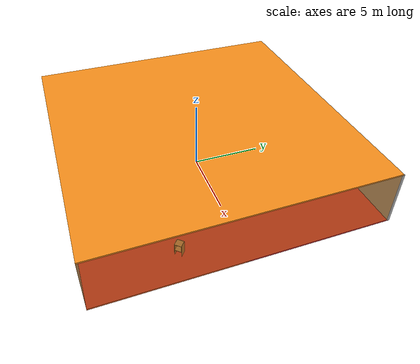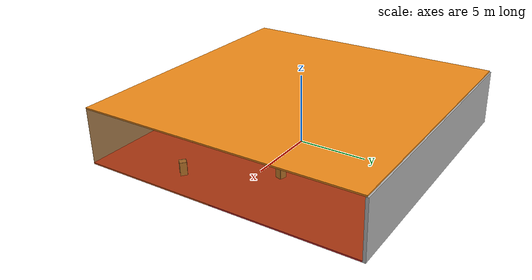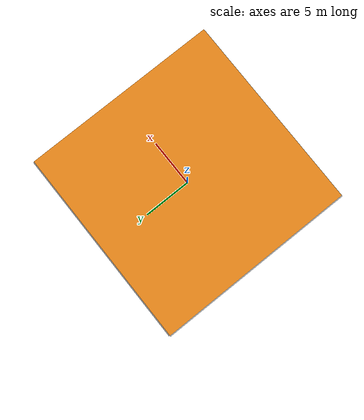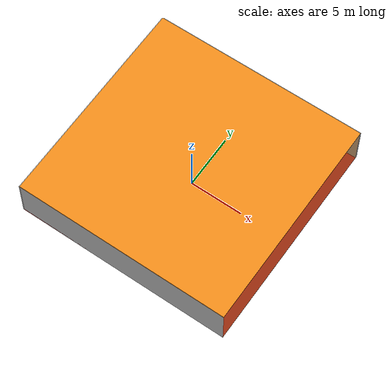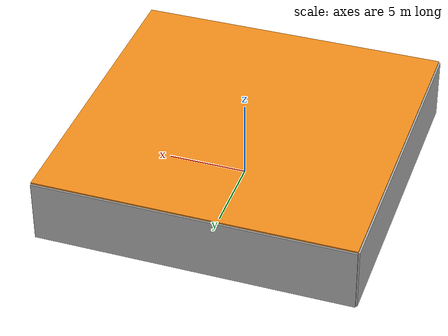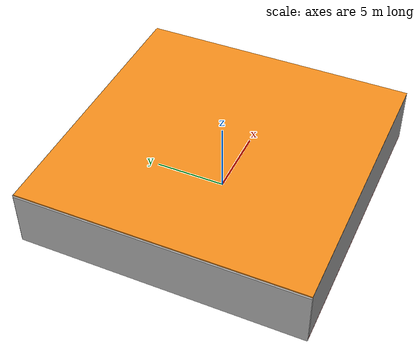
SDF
<sdf version="1.4">
 <world name="default">
  <physics type="ode">
   <max_step_size>0.001</max_step_size>
   <real_time_factor>1</real_time_factor>
   <real_time_update_rate>1000</real_time_update_rate>
   <gravity>0 0 -9.8</gravity>
  </physics>
  <scene><ambient>0.4 0.4 0.4 1</ambient><background>0.7 0.7 0.7 1</background><shadows>1</shadows></scene>
  <model name="Surrounding">
   <static>1</static>
   <link name="Ceiling">
    <collision name="Ceiling_Collision"><geometry><box><size>20 20 0.1</size></box></geometry></collision>
    <visual name="Ceiling_Visual">
     <geometry><box><size>20 20 0.1</size></box></geometry>
     <material>
      <script><uri>file://media/materials/scripts/gazebo.material</uri><name>Gazebo/Orange</name></script>
     </material>
    </visual>
    <pose>0 0 4.05 0 0 0</pose>
   </link>
   <link name="Wall_South">
    <collision name="Wall_South_Collision">
     <geometry><box><size>20 0 4</size></box></geometry>
     <pose>0 0 2 0 -0 0</pose>
    </collision>
    <visual name="Wall_South_Visual">
     <pose>0 0 2 0 -0 0</pose>
     <geometry><box><size>20 0 4</size></box></geometry>
     <material>
      <script><uri>file://media/materials/scripts/gazebo.material</uri><name>Gazebo/Grey</name></script>
     </material>
    </visual>
    <velocity_decay><linear>0</linear><angular>0</angular></velocity_decay>
    <pose>0 -10 0 0 -0 0</pose>
   </link>
   <link name="Wall_East">
    <collision name="Wall_21_Collision">
     <geometry><box><size>20 0 4</size></box></geometry>
     <pose>0 0 2 0 -0 0</pose>
    </collision>
    <visual name="Wall_21_Visual">
     <pose>0 0 2 0 -0 0</pose>
     <geometry><box><size>20 0 4</size></box></geometry>
     <material>
      <script>
       <uri>file://media/materials/scripts/gazebo.material</uri>
       <name>Gazebo/OrangeTransparent</name>
      </script>
     </material>
    </visual>
    <velocity_decay><linear>0</linear><angular>0</angular></velocity_decay>
    <pose>10 0 0 0 -0 1.5708</pose>
   </link>
   <link name="Wall_North">
    <collision name="Wall_22_Collision">
     <geometry><box><size>20 0.2 4</size></box></geometry>
     <pose>0 0 2 0 -0 0</pose>
    </collision>
    <visual name="Wall_22_Visual">
     <pose>0 0 2 0 -0 0</pose>
     <geometry><box><size>20 0.2 4</size></box></geometry>
     <material>
      <script><uri>file://media/materials/scripts/gazebo.material</uri><name>Gazebo/PioneerBody</name></script>
     </material>
    </visual>
    <velocity_decay><linear>0</linear><angular>0</angular></velocity_decay>
    <pose>0 10 0 0 -0 0</pose>
   </link>
   <link name="Wall_West">
    <collision name="Wall_23_Collision">
     <geometry><box><size>20 0.2 4</size></box></geometry>
     <pose>0 0 2 0 -0 0</pose>
    </collision>
    <visual name="Wall_23_Visual">
     <pose>0 0 2 0 -0 0</pose>
     <geometry><box><size>20 0.2 4</size></box></geometry>
     <material>
      <script><uri>file://media/materials/scripts/gazebo.material</uri><name>Gazebo/Pioneer2Body</name></script>
     </material>
    </visual>
    <velocity_decay><linear>0</linear><angular>0</angular></velocity_decay>
    <pose>-10 0 0 0 0 -1.5708</pose>
   </link>
   <link name="Ground_link">
    <collision name="collision">
     <pose>0 0 .05 0 -0 0</pose>
     <geometry><box><size>20 20 0.1</size></box></geometry>
    </collision>
    <visual name="visual">
     <pose>0 0 .05 0 -0 0</pose>
     <geometry><box><size>20 20 0.1</size></box></geometry>
     <material>
      <script><uri>file://media/materials/scripts/gazebo.material</uri><name>Gazebo/Red</name></script>
     </material>
    </visual>
   </link>
   <static>1</static>
  </model>
  <spherical_coordinates>
   <surface_model>EARTH_WGS84</surface_model>
   <latitude_deg>0</latitude_deg>
   <longitude_deg>0</longitude_deg>
   <elevation>0</elevation>
   <heading_deg>0</heading_deg>
  </spherical_coordinates>
  <light name="lightball_0" type="diffuse">
   <diffuse>0.8 0.8 0.8 1</diffuse>
   <specular>0.2 0.2 0.2 1</specular>
   <attenuation>
    <range>100</range>
    <constant>0.7</constant>
    <linear>0.01</linear>
    <quadratic>0.001</quadratic>
   </attenuation>
   <direction>-0.5 0.1 -0.9</direction>
   <pose>5.28202953531 -2.70508406864 1.44724386451 0 0 0</pose>
  </light>
  <light name="lightball_1" type="diffuse">
   <diffuse>0.8 0.8 0.8 1</diffuse>
   <specular>0.2 0.2 0.2 1</specular>
   <attenuation>
    <range>100</range>
    <constant>0.7</constant>
    <linear>0.01</linear>
    <quadratic>0.001</quadratic>
   </attenuation>
   <direction>-0.5 0.1 -0.9</direction>
   <pose>0.307782118565 -2.31608030761 1.44433982432 0 0 0</pose>
  </light>
  <light name="lightball_2" type="diffuse">
   <diffuse>0.8 0.8 0.8 1</diffuse>
   <specular>0.2 0.2 0.2 1</specular>
   <attenuation>
    <range>100</range>
    <constant>0.7</constant>
    <linear>0.01</linear>
    <quadratic>0.001</quadratic>
   </attenuation>
   <direction>-0.5 0.1 -0.9</direction>
   <pose>-1.92369328003 3.45307047374 3.23399315792 0 0 0</pose>
  </light>
  <light name="lightball_3" type="diffuse">
   <diffuse>0.8 0.8 0.8 1</diffuse>
   <specular>0.2 0.2 0.2 1</specular>
   <attenuation>
    <range>100</range>
    <constant>0.7</constant>
    <linear>0.01</linear>
    <quadratic>0.001</quadratic>
   </attenuation>
   <direction>-0.5 0.1 -0.9</direction>
   <pose>-7.20144878689 -2.41466120561 1.10447970437 0 0 0</pose>
  </light>
  <light name="lightball_4" type="diffuse">
   <diffuse>0.8 0.8 0.8 1</diffuse>
   <specular>0.2 0.2 0.2 1</specular>
   <attenuation>
    <range>100</range>
    <constant>0.7</constant>
    <linear>0.01</linear>
    <quadratic>0.001</quadratic>
   </attenuation>
   <direction>-0.5 0.1 -0.9</direction>
   <pose>2.10693095573 5.21238383608 1.38192146761 0 0 0</pose>
  </light>
  <light name="lightball_5" type="diffuse">
   <diffuse>0.8 0.8 0.8 1</diffuse>
   <specular>0.2 0.2 0.2 1</specular>
   <attenuation>
    <range>100</range>
    <constant>0.7</constant>
    <linear>0.01</linear>
    <quadratic>0.001</quadratic>
   </attenuation>
   <direction>-0.5 0.1 -0.9</direction>
   <pose>2.17400706057 1.49135525462 3.34849055204 0 0 0</pose>
  </light>
  <light name="lightball_6" type="diffuse">
   <diffuse>0.8 0.8 0.8 1</diffuse>
   <specular>0.2 0.2 0.2 1</specular>
   <attenuation>
    <range>100</range>
    <constant>0.7</constant>
    <linear>0.01</linear>
    <quadratic>0.001</quadratic>
   </attenuation>
   <direction>-0.5 0.1 -0.9</direction>
   <pose>-4.29388780083 -8.8758915821 1.02330199142 0 0 0</pose>
  </light>
  <light name="lightball_7" type="diffuse">
   <diffuse>0.8 0.8 0.8 1</diffuse>
   <specular>0.2 0.2 0.2 1</specular>
   <attenuation>
    <range>100</range>
    <constant>0.7</constant>
    <linear>0.01</linear>
    <quadratic>0.001</quadratic>
   </attenuation>
   <direction>-0.5 0.1 -0.9</direction>
   <pose>7.15176635481 7.16882901036 3.42748092948 0 0 0</pose>
  </light>
  <light name="lightball_8" type="diffuse">
   <diffuse>0.8 0.8 0.8 1</diffuse>
   <specular>0.2 0.2 0.2 1</specular>
   <attenuation>
    <range>100</range>
    <constant>0.7</constant>
    <linear>0.01</linear>
    <quadratic>0.001</quadratic>
   </attenuation>
   <direction>-0.5 0.1 -0.9</direction>
   <pose>9.80265723253 -0.252739414492 3.45524124439 0 0 0</pose>
  </light>
  <light name="lightball_9" type="diffuse">
   <diffuse>0.8 0.8 0.8 1</diffuse>
   <specular>0.2 0.2 0.2 1</specular>
   <attenuation>
    <range>100</range>
    <constant>0.7</constant>
    <linear>0.01</linear>
    <quadratic>0.001</quadratic>
   </attenuation>
   <direction>-0.5 0.1 -0.9</direction>
   <pose>-7.30350154898 -8.45815697881 2.25047509933 0 0 0</pose>
  </light>
  <light name="lightball_10" type="diffuse">
   <diffuse>0.8 0.8 0.8 1</diffuse>
   <specular>0.2 0.2 0.2 1</specular>
   <attenuation>
    <range>100</range>
    <constant>0.7</constant>
    <linear>0.01</linear>
    <quadratic>0.001</quadratic>
   </attenuation>
   <direction>-0.5 0.1 -0.9</direction>
   <pose>9.92307486846 3.13014891975 1.01541705793 0 0 0</pose>
  </light>
  <include>
   <uri>model://construction_cone</uri>
   <pose>-7.01375727946 -5.4001388081 0 0 0 2.66824751838</pose>
  </include>
  <include>
   <uri>model://construction_cone</uri>
   <pose>-2.04420773849 -7.69443417101 0 0 0 1.38506849112</pose>
  </include>
  <include>
   <uri>model://robocup_3Dsim_goal</uri>
   <pose>-2.4431499875 1.89389136691 0 0 0 2.06923609313</pose>
  </include>
  <include><uri>model://cabinet</uri><pose>5.04940111851 1.58354312911 0 0 0 1.28116529115</pose></include>
  <include><uri>model://cabinet</uri><pose>8.00345423037 -3.95853047402 0 0 0 2.42775642567</pose></include>
 </world>
</sdf>

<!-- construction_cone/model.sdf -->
<sdf version="1.5">
  <model name="Construction Cone">
    <link name="link">
      <collision name="collision">
        <geometry>
          <mesh>
            <scale>10 10 10</scale>
            <uri>file://isr-testbed/construction_cone/meshes/construction_cone.dae</uri>
          </mesh>
        </geometry>
      </collision>
      <visual name="visual">
        <geometry>
          <mesh>
            <scale>10 10 10</scale>
            <uri>file://isr-testbed/construction_cone/meshes/construction_cone.dae</uri>
          </mesh>
        </geometry>
      </visual>
    </link>
  </model>
</sdf>

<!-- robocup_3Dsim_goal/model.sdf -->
<sdf version="1.5">
  <model name="robocup_3d_goal">
    <static>true</static>
    <link name="left_post">
      <pose>0 1.05 0.45 0 0 0</pose>
      <collision name="collision">
        <geometry>
          <cylinder>
            <radius>0.05</radius>
            <length>0.9</length>
          </cylinder>
        </geometry>
      </collision>
      <visual name="visual">
        <geometry>
          <cylinder>
            <radius>0.05</radius>
            <length>0.9</length>
          </cylinder>
        </geometry>
        <material>
          <script>
            <uri>file://media/materials/scripts/gazebo.material</uri>
            <name>Gazebo/ZincYellow</name>
          </script>
        </material>
      </visual>
    </link>
    <link name="left_support_horiz_lower">
      <pose>0.30 1.05 0.01 0 0 0</pose>
      <collision name="collision">
        <geometry>
          <box>
            <size>0.50 0.02 0.02</size>
          </box>
        </geometry>
      </collision>
      <visual name="visual">
        <geometry>
          <box>
            <size>0.50 0.02 0.02</size>
          </box>
        </geometry>
        <material>
          <script>
            <uri>file://media/materials/scripts/gazebo.material</uri>
            <name>Gazebo/White</name>
          </script>
        </material>
      </visual>
    </link>
    <link name="left_support_horiz_upper">
      <pose>0.30 1.05 0.79 0 0 0</pose>
      <collision name="collision">
        <geometry>
          <box>
            <size>0.50 0.02 0.02</size>
          </box>
        </geometry>
      </collision>
      <visual name="visual">
        <geometry>
          <box>
            <size>0.50 0.02 0.02</size>
          </box>
        </geometry>
        <material>
          <script>
            <uri>file://media/materials/scripts/gazebo.material</uri>
            <name>Gazebo/White</name>
          </script>
        </material>
      </visual>
    </link>
    <link name="left_support_vertical">
      <pose>0.56 1.05 0.4 0 1.5708 0</pose>
      <collision name="collision">
        <geometry>
          <box>
            <size>0.80 0.02 0.02</size>
          </box>
        </geometry>
      </collision>
      <visual name="visual">
        <geometry>
          <box>
            <size>0.80 0.02 0.02</size>
          </box>
        </geometry>
        <material>
          <script>
            <uri>file://media/materials/scripts/gazebo.material</uri>
            <name>Gazebo/White</name>
          </script>
        </material>
      </visual>
    </link>
    <link name="right_support_horiz_lower">
      <pose>0.30 -1.05 0.01 0 0 0</pose>
      <collision name="collision">
        <geometry>
          <box>
            <size>0.50 0.02 0.02</size>
          </box>
        </geometry>
      </collision>
      <visual name="visual">
        <geometry>
          <box>
            <size>0.50 0.02 0.02</size>
          </box>
        </geometry>
        <material>
          <script>
            <uri>file://media/materials/scripts/gazebo.material</uri>
            <name>Gazebo/White</name>
          </script>
        </material>
      </visual>
    </link>
    <link name="right_support_horiz_upper">
      <pose>0.30 -1.05 0.79 0 0 0</pose>
      <collision name="collision">
        <geometry>
          <box>
            <size>0.50 0.02 0.02</size>
          </box>
        </geometry>
      </collision>
      <visual name="visual">
        <geometry>
          <box>
            <size>0.50 0.02 0.02</size>
          </box>
        </geometry>
        <material>
          <script>
            <uri>file://media/materials/scripts/gazebo.material</uri>
            <name>Gazebo/White</name>
          </script>
        </material>
      </visual>
    </link>
    <link name="right_support_vertical">
      <pose>0.56 -1.05 0.4 0 1.5708 0</pose>
      <collision name="collision">
        <geometry>
          <box>
            <size>0.80 0.02 0.02</size>
          </box>
        </geometry>
      </collision>
      <visual name="visual">
        <geometry>
          <box>
            <size>0.80 0.02 0.02</size>
          </box>
        </geometry>
        <material>
          <script>
            <uri>file://media/materials/scripts/gazebo.material</uri>
            <name>Gazebo/White</name>
          </script>
        </material>
      </visual>
    </link>
    <link name="center_support_horiz_lower">
      <pose>0.56 0 0.01 0 1.5708 0</pose>
      <collision name="collision">
        <geometry>
          <box>
            <size>0.02 2.08 0.02</size>
          </box>
        </geometry>
      </collision>
      <visual name="visual">
        <geometry>
          <box>
            <size>0.02 2.08 0.02</size>
          </box>
        </geometry>
        <material>
          <script>
            <uri>file://media/materials/scripts/gazebo.material</uri>
            <name>Gazebo/White</name>
          </script>
        </material>
      </visual>
    </link>
    <link name="center_support_horiz_upper">
      <pose>0.56 0 0.79 0 1.5708 0</pose>
      <collision name="collision">
        <geometry>
          <box>
            <size>0.02 2.08 0.02</size>
          </box>
        </geometry>
      </collision>
      <visual name="visual">
        <geometry>
          <box>
            <size>0.02 2.08 0.02</size>
          </box>
        </geometry>
        <material>
          <script>
            <uri>file://media/materials/scripts/gazebo.material</uri>
            <name>Gazebo/White</name>
          </script>
        </material>
      </visual>
    </link>
    <link name="right_post">
      <pose>0 -1.05 0.45 0 0 0</pose>
      <collision name="collision">
        <geometry>
          <cylinder>
            <radius>0.05</radius>
            <length>0.9</length>
          </cylinder>
        </geometry>
      </collision>
      <visual name="visual">
        <geometry>
          <cylinder>
            <radius>0.05</radius>
            <length>0.9</length>
          </cylinder>
        </geometry>
        <material>
          <script>
            <uri>file://media/materials/scripts/gazebo.material</uri>
            <name>Gazebo/ZincYellow</name>
          </script>
        </material>
      </visual>
    </link>
    <link name="crossbar">
      <pose>0 0 0.85 1.57 1.57 0</pose>
      <collision name="collision">
        <geometry>
          <cylinder>
            <radius>0.05</radius>
            <length>2.0</length>
          </cylinder>
        </geometry>
      </collision>
      <visual name="visual">
        <geometry>
          <cylinder>
            <radius>0.05</radius>
            <length>2.0</length>
          </cylinder>
        </geometry>
        <material>
          <script>
            <uri>file://media/materials/scripts/gazebo.material</uri>
            <name>Gazebo/ZincYellow</name>
          </script>
        </material>
      </visual>
    </link>
    <link name="center_net">
      <pose>0.56 0 0.40 0 0 0</pose>
      <collision name="collision">
        <geometry>
          <box>
            <size>0.01 2.1 0.80</size>
          </box>
        </geometry>
      </collision>
      <visual name="visual">
        <geometry>
          <box>
            <size>0.01 2.1 0.80</size>
          </box>
        </geometry>
        <material>
          <script>
            <uri>model://../model_source/models/robocup09_spl_field/materials/scripts/</uri>
            <uri>model://../model_source/models/robocup09_spl_field/materials/textures/</uri>
            <name>RoboCup/Net</name>
          </script>
        </material>
      </visual>
    </link>
    <link name="left_net">
      <pose>0.30 1.05 0.40 0 0 0</pose>
      <collision name="collision">
        <geometry>
          <box>
            <size>0.50 0.01 0.76</size>
          </box>
        </geometry>
      </collision>
      <visual name="visual">
        <geometry>
          <box>
            <size>0.50 0.01 0.76</size>
          </box>
        </geometry>
        <material>
          <script>
            <uri>model://../model_source/models/robocup09_spl_field/materials/scripts/</uri>
            <uri>model://../model_source/models/robocup09_spl_field/materials/textures/</uri>
            <name>RoboCup/Net</name>
          </script>
        </material>
      </visual>
    </link>
    <link name="right_net">
      <pose>0.30 -1.05 0.40 0 0 0</pose>
      <collision name="collision">
        <geometry>
          <box>
            <size>0.50 0.01 0.76</size>
          </box>
        </geometry>
      </collision>
      <visual name="visual">
        <geometry>
          <box>
            <size>0.50 0.01 0.76</size>
          </box>
        </geometry>
        <material>
          <script>
            <uri>model://../model_source/models/robocup09_spl_field/materials/scripts/</uri>
            <uri>model://../model_source/models/robocup09_spl_field/materials/textures/</uri>
            <name>RoboCup/Net</name>
          </script>
        </material>
      </visual>
    </link>
  </model>
</sdf>

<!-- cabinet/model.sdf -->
<sdf version="1.5">
  <model name="cabinet">
    <static>true</static>
    <link name="cabinet_bottom_plate">
      <inertial>
        <pose>0 0 -1 0 0 0</pose>
        <inertia>
          <ixx>2.050000</ixx>
          <ixy>0</ixy>
          <ixz>0</ixz>
          <iyy>2.050000</iyy>
          <iyz>0</iyz>
          <izz>2.050000</izz>
        </inertia>
        <mass>25.000000</mass>
      </inertial>
      <collision name="cabinet_bottom_plate_geom">
        <pose>0 0 0.010000 0 0 0</pose>
        <geometry>
          <box>
            <size>0.450000 0.450000 0.020000</size>
          </box>
        </geometry>
      </collision>
      <visual name="cabinet_bottom_plate_geom_visual">
        <pose>0 0 0.010000 0 0 0</pose>
        <geometry>
          <box>
            <size>0.450000 0.450000 0.020000</size>
          </box>
        </geometry>
        <material>
          <script>
            <uri>model://media/materials/scripts/gazebo.material</uri>
            <name>Gazebo/Wood</name>
          </script>
        </material>
      </visual>
      <collision name="cabinet_bottom_plate_geom_cabinet_back_plate">
        <pose>0.235000 0 0.510000 0 0 0</pose>
        <geometry>
          <box>
            <size>0.020000 0.450000 1.020000</size>
          </box>
        </geometry>
      </collision>
      <visual name="cabinet_bottom_plate_geom_cabinet_back_plate_visual">
        <pose>0.235000 0 0.510000 0 0 0</pose>
        <geometry>
          <box>
            <size>0.020000 0.450000 1.020000</size>
          </box>
        </geometry>
        <material>
          <script>
            <uri>model://media/materials/scripts/gazebo.material</uri>
            <name>Gazebo/Wood</name>
          </script>
        </material>
      </visual>
      <collision name="cabinet_bottom_plate_geom_cabinet_left_plate">
        <pose>0 0.235000 0.510000 0 0 0</pose>
        <geometry>
          <box>
            <size>0.450000 0.020000 1.020000</size>
          </box>
        </geometry>
      </collision>
      <visual name="cabinet_bottom_plate_geom_cabinet_left_plate_visual">
        <pose>0 0.235000 0.510000 0 0 0</pose>
        <geometry>
          <box>
            <size>0.450000 0.020000 1.020000</size>
          </box>
        </geometry>
        <material>
          <script>
            <uri>model://media/materials/scripts/gazebo.material</uri>
            <name>Gazebo/Wood</name>
          </script>
        </material>
      </visual>
      <collision name="cabinet_bottom_plate_geom_cabinet_middle_plate">
        <pose>0 0 0.510000 0 0 0</pose>
        <geometry>
          <box>
            <size>0.450000 0.450000 0.020000</size>
          </box>
        </geometry>
      </collision>
      <visual name="cabinet_bottom_plate_geom_cabinet_middle_plate_visual">
        <pose>0 0 0.510000 0 0 0</pose>
        <geometry>
          <box>
            <size>0.450000 0.450000 0.020000</size>
          </box>
        </geometry>
        <material>
          <script>
            <uri>model://media/materials/scripts/gazebo.material</uri>
            <name>Gazebo/Wood</name>
          </script>
        </material>
      </visual>
      <collision name="cabinet_bottom_plate_geom_cabinet_right_plate">
        <pose>0 -0.235000 0.510000 0 0 0</pose>
        <geometry>
          <box>
            <size>0.450000 0.020000 1.020000</size>
          </box>
        </geometry>
      </collision>
      <visual name="cabinet_bottom_plate_geom_cabinet_right_plate_visual">
        <pose>0 -0.235000 0.510000 0 0 0</pose>
        <geometry>
          <box>
            <size>0.450000 0.020000 1.020000</size>
          </box>
        </geometry>
        <material>
          <script>
            <uri>model://media/materials/scripts/gazebo.material</uri>
            <name>Gazebo/Wood</name>
          </script>
        </material>
      </visual>
      <collision name="cabinet_bottom_plate_geom_cabinet_top_plate">
        <pose>0 0 1.010000 0 0 0</pose>
        <geometry>
          <box>
            <size>0.450000 0.450000 0.020000</size>
          </box>
        </geometry>
      </collision>
      <visual name="cabinet_bottom_plate_geom_cabinet_top_plate_visual">
        <pose>0 0 1.010000 0 0 0</pose>
        <geometry>
          <box>
            <size>0.450000 0.450000 0.020000</size>
          </box>
        </geometry>
        <material>
          <script>
            <uri>model://media/materials/scripts/gazebo.material</uri>
            <name>Gazebo/Wood</name>
          </script>
        </material>
      </visual>
    </link>
  </model>
</sdf>
